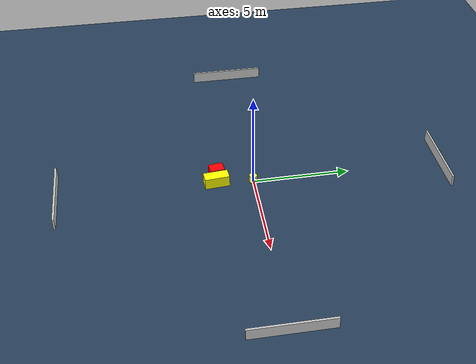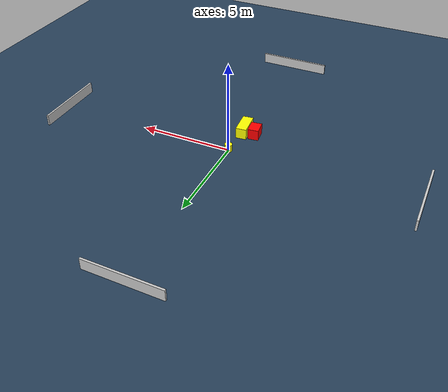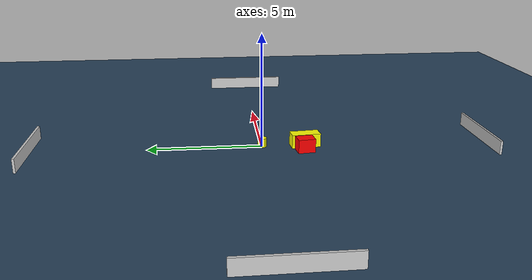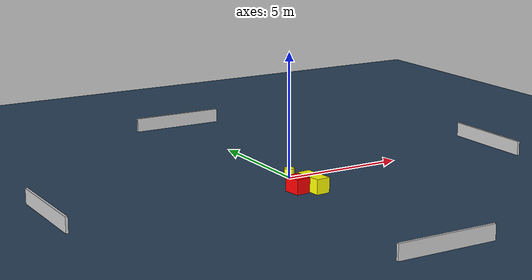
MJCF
<?xml version="1.0" ?>
<mujoco model="generated_environment">
  <option timestep="0.01" integrator="RK4" cone="elliptic"/>
  <default>
    <geom density="1"/>
  </default>
  <asset>
    <texture builtin="gradient" height="3072" name="skybox" rgb1="0.3 0.5 0.7" rgb2="0 0 0" type="skybox" width="512"/>
    <texture builtin="checker" height="300" name="groundplane" rgb1="0.2 0.3 0.4" rgb2="0.1 0.2 0.3" type="2d" width="300"/>
    <material name="groundplane" reflectance="0.2" texrepeat="5 5" texture="groundplane"/>
  </asset>
  <worldbody>
    <light dir="0 0 -1" directional="true" pos="0 0 1.5"/>
    <geom condim="3" friction="0.5 0.005 0.001" material="groundplane" name="floor" pos="0 0 0" size="0 0 0.05" type="plane"/>
    <body name="walls">
      <geom name="wall_1" condim="4" pos="-10.0 0.0 0.3" rgba="0.800000011920929 0.800000011920929 0.800000011920929 1.0" size="0.05 2.0 0.3" type="box"/>
      <geom name="wall_2" condim="4" pos="10.0 0.0 0.3" rgba="0.800000011920929 0.800000011920929 0.800000011920929 1.0" size="0.05 2.0 0.3" type="box"/>
      <geom name="wall_3" condim="4" pos="0.0 -10.0 0.3" rgba="0.800000011920929 0.800000011920929 0.800000011920929 1.0" size="2.0 0.05 0.3" type="box"/>
      <geom name="wall_4" condim="4" pos="0.0 10.0 0.3" rgba="0.800000011920929 0.800000011920929 0.800000011920929 1.0" size="2.0 0.05 0.3" type="box"/>
    </body>
    <body name="robot">
      <joint name="joint_x" type="slide" pos="0 0 0" axis="1 0 0"/>
      <joint name="joint_y" type="slide" pos="0 0 0" axis="0 1 0"/>
      <geom name="robot" type="cylinder" pos="0.0 0.0 0.2" size="0.2 0.2 0.0" mass="5.0" friction="1.0 0.005 0.0001" condim="4" rgba="1.0 1.0 0.0 1.0"/>
    </body>
    <body name="obstacle_1_movable">
      <geom name="obstacle_1_movable" condim="4" pos="-0.08524658538700346 -1.8944078109421385 0.3" euler="0 0 275.19861381888853" friction="0.0 0.005 0.001" rgba="1.0 1.0 0.0 1.0" size="0.638183818140024 0.2864681599342581 0.3" type="box" mass="0.1"/>
      <joint type="free"/>
    </body>
    <body name="obstacle_2_static">
      <geom name="obstacle_2_static" condim="4" pos="-0.7195611408402298 -1.8075553170201242 0.3" euler="0 0 6.820534037153374" friction="0.0 0.005 0.001" rgba="1.0 0.0 0.0 1.0" size="0.2899285568568347 0.3760943397149821 0.3" type="box"/>
    </body>
  </worldbody>
  <actuator>
    <motor name="actuator_x" joint="joint_x" gear="1" ctrlrange="-1 1"/>
    <motor name="actuator_y" joint="joint_y" gear="1" ctrlrange="-1 1"/>
  </actuator>
</mujoco>
